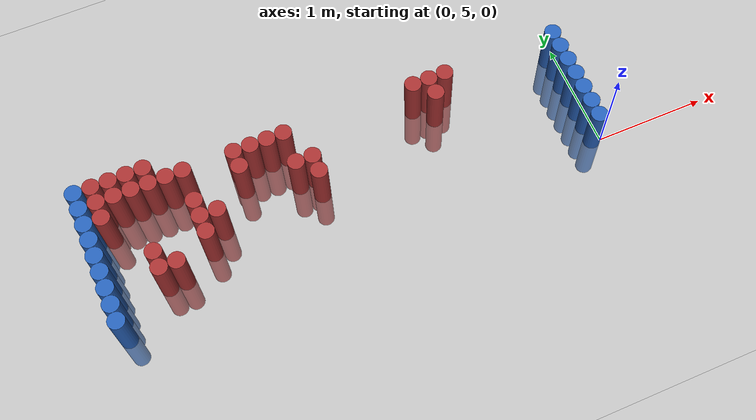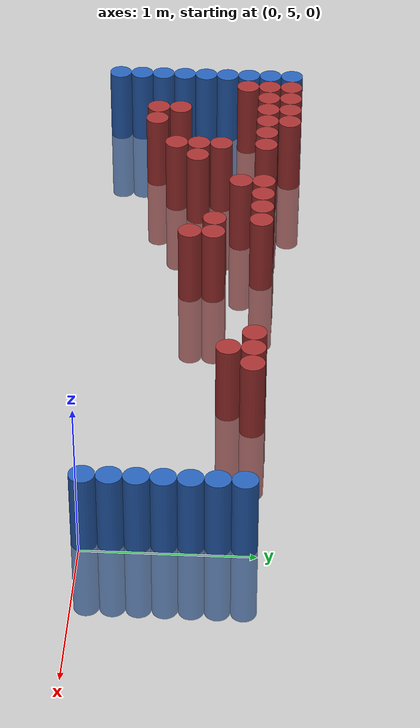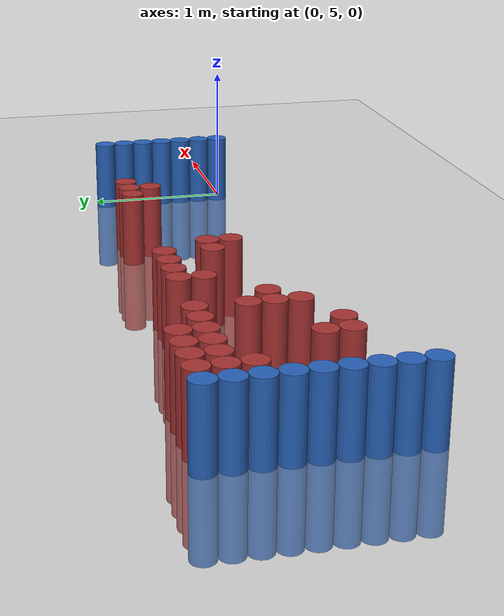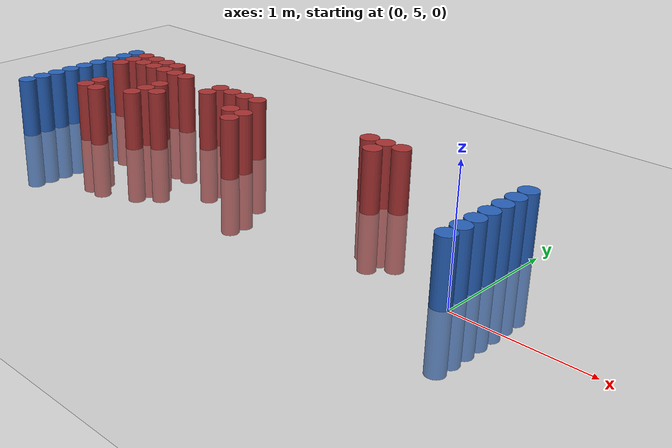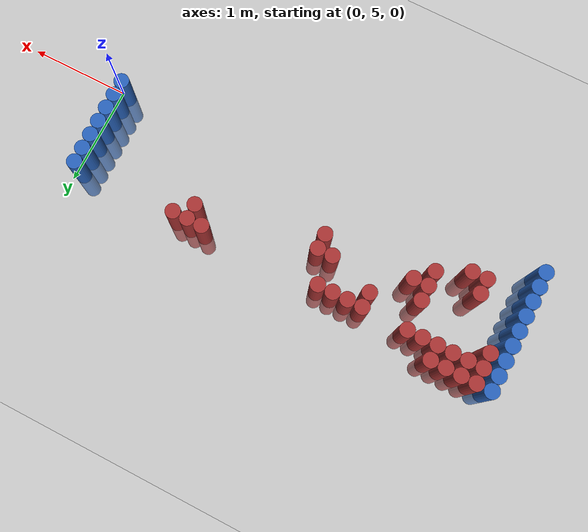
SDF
<sdf version="1.6">
 <world name="world_299">
  <model name="ground_plane">
   <static>1</static>
   <link name="link">
    <collision name="collision">
     <geometry><plane><normal>0 0 1</normal><size>100 100</size></plane></geometry>
     <surface><friction><ode><mu>100</mu><mu2>50</mu2></ode></friction></surface>
    </collision>
    <visual name="visual">
     <cast_shadows>0</cast_shadows>
     <geometry><plane><normal>0 0 1</normal><size>100 100</size></plane></geometry>
     <material>
      <script><uri>file://media/materials/scripts/gazebo.material</uri><name>Gazebo/Grey</name></script>
     </material>
    </visual>
   </link>
  </model>
  <model name="unit_cylinder_93">
   <static>1</static>
   <pose>-4.425000 4.875000 0.000000 0.000000 0.000000 0.000000</pose>
   <link name="link">
    <inertial>
     <mass>1</mass>
     <inertia><ixx>0.145833</ixx><ixy>0</ixy><ixz>0</ixz><iyy>0.145833</iyy><iyz>0</iyz><izz>0.125</izz></inertia>
    </inertial>
    <collision name="collision">
     <geometry><cylinder><radius>0.075000</radius><length>1</length></cylinder></geometry>
    </collision>
    <visual name="visual">
     <geometry><cylinder><radius>0.075000</radius><length>1</length></cylinder></geometry>
     <material>
      <ambient>0.152000 0.379000 0.720000 1</ambient>
      <diffuse>0.152000 0.379000 0.720000 1</diffuse>
     </material>
     <material>
      <script><name>Gazebo/Grey</name><uri>file://media/materials/scripts/gazebo.material</uri></script>
     </material>
    </visual>
   </link>
  </model>
  <model name="unit_cylinder_94">
   <static>1</static>
   <pose>-0.075000 5.025000 0.000000 0.000000 0.000000 0.000000</pose>
   <link name="link">
    <inertial>
     <mass>1</mass>
     <inertia><ixx>0.145833</ixx><ixy>0</ixy><ixz>0</ixz><iyy>0.145833</iyy><iyz>0</iyz><izz>0.125</izz></inertia>
    </inertial>
    <collision name="collision">
     <geometry><cylinder><radius>0.075000</radius><length>1</length></cylinder></geometry>
    </collision>
    <visual name="visual">
     <geometry><cylinder><radius>0.075000</radius><length>1</length></cylinder></geometry>
     <material>
      <ambient>0.152000 0.379000 0.720000 1</ambient>
      <diffuse>0.152000 0.379000 0.720000 1</diffuse>
     </material>
     <material>
      <script><name>Gazebo/Grey</name><uri>file://media/materials/scripts/gazebo.material</uri></script>
     </material>
    </visual>
   </link>
  </model>
  <model name="unit_cylinder_95">
   <static>1</static>
   <pose>-4.425000 5.025000 0.000000 0.000000 0.000000 0.000000</pose>
   <link name="link">
    <inertial>
     <mass>1</mass>
     <inertia><ixx>0.145833</ixx><ixy>0</ixy><ixz>0</ixz><iyy>0.145833</iyy><iyz>0</iyz><izz>0.125</izz></inertia>
    </inertial>
    <collision name="collision">
     <geometry><cylinder><radius>0.075000</radius><length>1</length></cylinder></geometry>
    </collision>
    <visual name="visual">
     <geometry><cylinder><radius>0.075000</radius><length>1</length></cylinder></geometry>
     <material>
      <ambient>0.152000 0.379000 0.720000 1</ambient>
      <diffuse>0.152000 0.379000 0.720000 1</diffuse>
     </material>
     <material>
      <script><name>Gazebo/Grey</name><uri>file://media/materials/scripts/gazebo.material</uri></script>
     </material>
    </visual>
   </link>
  </model>
  <model name="unit_cylinder_96">
   <static>1</static>
   <pose>-4.425000 5.175000 0.000000 0.000000 0.000000 0.000000</pose>
   <link name="link">
    <inertial>
     <mass>1</mass>
     <inertia><ixx>0.145833</ixx><ixy>0</ixy><ixz>0</ixz><iyy>0.145833</iyy><iyz>0</iyz><izz>0.125</izz></inertia>
    </inertial>
    <collision name="collision">
     <geometry><cylinder><radius>0.075000</radius><length>1</length></cylinder></geometry>
    </collision>
    <visual name="visual">
     <geometry><cylinder><radius>0.075000</radius><length>1</length></cylinder></geometry>
     <material>
      <ambient>0.152000 0.379000 0.720000 1</ambient>
      <diffuse>0.152000 0.379000 0.720000 1</diffuse>
     </material>
     <material>
      <script><name>Gazebo/Grey</name><uri>file://media/materials/scripts/gazebo.material</uri></script>
     </material>
    </visual>
   </link>
  </model>
  <model name="unit_cylinder_97">
   <static>1</static>
   <pose>-4.425000 5.325000 0.000000 0.000000 0.000000 0.000000</pose>
   <link name="link">
    <inertial>
     <mass>1</mass>
     <inertia><ixx>0.145833</ixx><ixy>0</ixy><ixz>0</ixz><iyy>0.145833</iyy><iyz>0</iyz><izz>0.125</izz></inertia>
    </inertial>
    <collision name="collision">
     <geometry><cylinder><radius>0.075000</radius><length>1</length></cylinder></geometry>
    </collision>
    <visual name="visual">
     <geometry><cylinder><radius>0.075000</radius><length>1</length></cylinder></geometry>
     <material>
      <ambient>0.152000 0.379000 0.720000 1</ambient>
      <diffuse>0.152000 0.379000 0.720000 1</diffuse>
     </material>
     <material>
      <script><name>Gazebo/Grey</name><uri>file://media/materials/scripts/gazebo.material</uri></script>
     </material>
    </visual>
   </link>
  </model>
  <model name="unit_cylinder_98">
   <static>1</static>
   <pose>-4.425000 5.475000 0.000000 0.000000 0.000000 0.000000</pose>
   <link name="link">
    <inertial>
     <mass>1</mass>
     <inertia><ixx>0.145833</ixx><ixy>0</ixy><ixz>0</ixz><iyy>0.145833</iyy><iyz>0</iyz><izz>0.125</izz></inertia>
    </inertial>
    <collision name="collision">
     <geometry><cylinder><radius>0.075000</radius><length>1</length></cylinder></geometry>
    </collision>
    <visual name="visual">
     <geometry><cylinder><radius>0.075000</radius><length>1</length></cylinder></geometry>
     <material>
      <ambient>0.152000 0.379000 0.720000 1</ambient>
      <diffuse>0.152000 0.379000 0.720000 1</diffuse>
     </material>
     <material>
      <script><name>Gazebo/Grey</name><uri>file://media/materials/scripts/gazebo.material</uri></script>
     </material>
    </visual>
   </link>
  </model>
  <model name="unit_cylinder_99">
   <static>1</static>
   <pose>-4.425000 5.625000 0.000000 0.000000 0.000000 0.000000</pose>
   <link name="link">
    <inertial>
     <mass>1</mass>
     <inertia><ixx>0.145833</ixx><ixy>0</ixy><ixz>0</ixz><iyy>0.145833</iyy><iyz>0</iyz><izz>0.125</izz></inertia>
    </inertial>
    <collision name="collision">
     <geometry><cylinder><radius>0.075000</radius><length>1</length></cylinder></geometry>
    </collision>
    <visual name="visual">
     <geometry><cylinder><radius>0.075000</radius><length>1</length></cylinder></geometry>
     <material>
      <ambient>0.152000 0.379000 0.720000 1</ambient>
      <diffuse>0.152000 0.379000 0.720000 1</diffuse>
     </material>
     <material>
      <script><name>Gazebo/Grey</name><uri>file://media/materials/scripts/gazebo.material</uri></script>
     </material>
    </visual>
   </link>
  </model>
  <model name="unit_cylinder_100">
   <static>1</static>
   <pose>-4.425000 5.775000 0.000000 0.000000 0.000000 0.000000</pose>
   <link name="link">
    <inertial>
     <mass>1</mass>
     <inertia><ixx>0.145833</ixx><ixy>0</ixy><ixz>0</ixz><iyy>0.145833</iyy><iyz>0</iyz><izz>0.125</izz></inertia>
    </inertial>
    <collision name="collision">
     <geometry><cylinder><radius>0.075000</radius><length>1</length></cylinder></geometry>
    </collision>
    <visual name="visual">
     <geometry><cylinder><radius>0.075000</radius><length>1</length></cylinder></geometry>
     <material>
      <ambient>0.152000 0.379000 0.720000 1</ambient>
      <diffuse>0.152000 0.379000 0.720000 1</diffuse>
     </material>
     <material>
      <script><name>Gazebo/Grey</name><uri>file://media/materials/scripts/gazebo.material</uri></script>
     </material>
    </visual>
   </link>
  </model>
  <model name="unit_cylinder_101">
   <static>1</static>
   <pose>-4.425000 5.925000 0.000000 0.000000 0.000000 0.000000</pose>
   <link name="link">
    <inertial>
     <mass>1</mass>
     <inertia><ixx>0.145833</ixx><ixy>0</ixy><ixz>0</ixz><iyy>0.145833</iyy><iyz>0</iyz><izz>0.125</izz></inertia>
    </inertial>
    <collision name="collision">
     <geometry><cylinder><radius>0.075000</radius><length>1</length></cylinder></geometry>
    </collision>
    <visual name="visual">
     <geometry><cylinder><radius>0.075000</radius><length>1</length></cylinder></geometry>
     <material>
      <ambient>0.152000 0.379000 0.720000 1</ambient>
      <diffuse>0.152000 0.379000 0.720000 1</diffuse>
     </material>
     <material>
      <script><name>Gazebo/Grey</name><uri>file://media/materials/scripts/gazebo.material</uri></script>
     </material>
    </visual>
   </link>
  </model>
  <model name="unit_cylinder_102">
   <static>1</static>
   <pose>-4.425000 6.075000 0.000000 0.000000 0.000000 0.000000</pose>
   <link name="link">
    <inertial>
     <mass>1</mass>
     <inertia><ixx>0.145833</ixx><ixy>0</ixy><ixz>0</ixz><iyy>0.145833</iyy><iyz>0</iyz><izz>0.125</izz></inertia>
    </inertial>
    <collision name="collision">
     <geometry><cylinder><radius>0.075000</radius><length>1</length></cylinder></geometry>
    </collision>
    <visual name="visual">
     <geometry><cylinder><radius>0.075000</radius><length>1</length></cylinder></geometry>
     <material>
      <ambient>0.152000 0.379000 0.720000 1</ambient>
      <diffuse>0.152000 0.379000 0.720000 1</diffuse>
     </material>
     <material>
      <script><name>Gazebo/Grey</name><uri>file://media/materials/scripts/gazebo.material</uri></script>
     </material>
    </visual>
   </link>
  </model>
  <model name="unit_cylinder_126">
   <static>1</static>
   <pose>-4.275000 5.775000 0.000000 0.000000 0.000000 0.000000</pose>
   <link name="link">
    <inertial>
     <mass>1</mass>
     <inertia><ixx>0.145833</ixx><ixy>0</ixy><ixz>0</ixz><iyy>0.145833</iyy><iyz>0</iyz><izz>0.125</izz></inertia>
    </inertial>
    <collision name="collision">
     <geometry><cylinder><radius>0.075000</radius><length>1</length></cylinder></geometry>
    </collision>
    <visual name="visual">
     <geometry><cylinder><radius>0.075000</radius><length>1</length></cylinder></geometry>
     <material>
      <ambient>0.648000 0.192000 0.192000 1</ambient>
      <diffuse>0.648000 0.192000 0.192000 1</diffuse>
     </material>
     <material>
      <script><name>Gazebo/Grey</name><uri>file://media/materials/scripts/gazebo.material</uri></script>
     </material>
    </visual>
   </link>
  </model>
  <model name="unit_cylinder_127">
   <static>1</static>
   <pose>-4.275000 5.925000 0.000000 0.000000 0.000000 0.000000</pose>
   <link name="link">
    <inertial>
     <mass>1</mass>
     <inertia><ixx>0.145833</ixx><ixy>0</ixy><ixz>0</ixz><iyy>0.145833</iyy><iyz>0</iyz><izz>0.125</izz></inertia>
    </inertial>
    <collision name="collision">
     <geometry><cylinder><radius>0.075000</radius><length>1</length></cylinder></geometry>
    </collision>
    <visual name="visual">
     <geometry><cylinder><radius>0.075000</radius><length>1</length></cylinder></geometry>
     <material>
      <ambient>0.648000 0.192000 0.192000 1</ambient>
      <diffuse>0.648000 0.192000 0.192000 1</diffuse>
     </material>
     <material>
      <script><name>Gazebo/Grey</name><uri>file://media/materials/scripts/gazebo.material</uri></script>
     </material>
    </visual>
   </link>
  </model>
  <model name="unit_cylinder_128">
   <static>1</static>
   <pose>-4.275000 6.075000 0.000000 0.000000 0.000000 0.000000</pose>
   <link name="link">
    <inertial>
     <mass>1</mass>
     <inertia><ixx>0.145833</ixx><ixy>0</ixy><ixz>0</ixz><iyy>0.145833</iyy><iyz>0</iyz><izz>0.125</izz></inertia>
    </inertial>
    <collision name="collision">
     <geometry><cylinder><radius>0.075000</radius><length>1</length></cylinder></geometry>
    </collision>
    <visual name="visual">
     <geometry><cylinder><radius>0.075000</radius><length>1</length></cylinder></geometry>
     <material>
      <ambient>0.648000 0.192000 0.192000 1</ambient>
      <diffuse>0.648000 0.192000 0.192000 1</diffuse>
     </material>
     <material>
      <script><name>Gazebo/Grey</name><uri>file://media/materials/scripts/gazebo.material</uri></script>
     </material>
    </visual>
   </link>
  </model>
  <model name="unit_cylinder_138">
   <static>1</static>
   <pose>-4.125000 5.925000 0.000000 0.000000 0.000000 0.000000</pose>
   <link name="link">
    <inertial>
     <mass>1</mass>
     <inertia><ixx>0.145833</ixx><ixy>0</ixy><ixz>0</ixz><iyy>0.145833</iyy><iyz>0</iyz><izz>0.125</izz></inertia>
    </inertial>
    <collision name="collision">
     <geometry><cylinder><radius>0.075000</radius><length>1</length></cylinder></geometry>
    </collision>
    <visual name="visual">
     <geometry><cylinder><radius>0.075000</radius><length>1</length></cylinder></geometry>
     <material>
      <ambient>0.648000 0.192000 0.192000 1</ambient>
      <diffuse>0.648000 0.192000 0.192000 1</diffuse>
     </material>
     <material>
      <script><name>Gazebo/Grey</name><uri>file://media/materials/scripts/gazebo.material</uri></script>
     </material>
    </visual>
   </link>
  </model>
  <model name="unit_cylinder_139">
   <static>1</static>
   <pose>-4.125000 6.075000 0.000000 0.000000 0.000000 0.000000</pose>
   <link name="link">
    <inertial>
     <mass>1</mass>
     <inertia><ixx>0.145833</ixx><ixy>0</ixy><ixz>0</ixz><iyy>0.145833</iyy><iyz>0</iyz><izz>0.125</izz></inertia>
    </inertial>
    <collision name="collision">
     <geometry><cylinder><radius>0.075000</radius><length>1</length></cylinder></geometry>
    </collision>
    <visual name="visual">
     <geometry><cylinder><radius>0.075000</radius><length>1</length></cylinder></geometry>
     <material>
      <ambient>0.648000 0.192000 0.192000 1</ambient>
      <diffuse>0.648000 0.192000 0.192000 1</diffuse>
     </material>
     <material>
      <script><name>Gazebo/Grey</name><uri>file://media/materials/scripts/gazebo.material</uri></script>
     </material>
    </visual>
   </link>
  </model>
  <model name="unit_cylinder_146">
   <static>1</static>
   <pose>-3.975000 5.175000 0.000000 0.000000 0.000000 0.000000</pose>
   <link name="link">
    <inertial>
     <mass>1</mass>
     <inertia><ixx>0.145833</ixx><ixy>0</ixy><ixz>0</ixz><iyy>0.145833</iyy><iyz>0</iyz><izz>0.125</izz></inertia>
    </inertial>
    <collision name="collision">
     <geometry><cylinder><radius>0.075000</radius><length>1</length></cylinder></geometry>
    </collision>
    <visual name="visual">
     <geometry><cylinder><radius>0.075000</radius><length>1</length></cylinder></geometry>
     <material>
      <ambient>0.648000 0.192000 0.192000 1</ambient>
      <diffuse>0.648000 0.192000 0.192000 1</diffuse>
     </material>
     <material>
      <script><name>Gazebo/Grey</name><uri>file://media/materials/scripts/gazebo.material</uri></script>
     </material>
    </visual>
   </link>
  </model>
  <model name="unit_cylinder_147">
   <static>1</static>
   <pose>-3.975000 5.325000 0.000000 0.000000 0.000000 0.000000</pose>
   <link name="link">
    <inertial>
     <mass>1</mass>
     <inertia><ixx>0.145833</ixx><ixy>0</ixy><ixz>0</ixz><iyy>0.145833</iyy><iyz>0</iyz><izz>0.125</izz></inertia>
    </inertial>
    <collision name="collision">
     <geometry><cylinder><radius>0.075000</radius><length>1</length></cylinder></geometry>
    </collision>
    <visual name="visual">
     <geometry><cylinder><radius>0.075000</radius><length>1</length></cylinder></geometry>
     <material>
      <ambient>0.648000 0.192000 0.192000 1</ambient>
      <diffuse>0.648000 0.192000 0.192000 1</diffuse>
     </material>
     <material>
      <script><name>Gazebo/Grey</name><uri>file://media/materials/scripts/gazebo.material</uri></script>
     </material>
    </visual>
   </link>
  </model>
  <model name="unit_cylinder_148">
   <static>1</static>
   <pose>-3.975000 5.925000 0.000000 0.000000 0.000000 0.000000</pose>
   <link name="link">
    <inertial>
     <mass>1</mass>
     <inertia><ixx>0.145833</ixx><ixy>0</ixy><ixz>0</ixz><iyy>0.145833</iyy><iyz>0</iyz><izz>0.125</izz></inertia>
    </inertial>
    <collision name="collision">
     <geometry><cylinder><radius>0.075000</radius><length>1</length></cylinder></geometry>
    </collision>
    <visual name="visual">
     <geometry><cylinder><radius>0.075000</radius><length>1</length></cylinder></geometry>
     <material>
      <ambient>0.648000 0.192000 0.192000 1</ambient>
      <diffuse>0.648000 0.192000 0.192000 1</diffuse>
     </material>
     <material>
      <script><name>Gazebo/Grey</name><uri>file://media/materials/scripts/gazebo.material</uri></script>
     </material>
    </visual>
   </link>
  </model>
  <model name="unit_cylinder_149">
   <static>1</static>
   <pose>-3.975000 6.075000 0.000000 0.000000 0.000000 0.000000</pose>
   <link name="link">
    <inertial>
     <mass>1</mass>
     <inertia><ixx>0.145833</ixx><ixy>0</ixy><ixz>0</ixz><iyy>0.145833</iyy><iyz>0</iyz><izz>0.125</izz></inertia>
    </inertial>
    <collision name="collision">
     <geometry><cylinder><radius>0.075000</radius><length>1</length></cylinder></geometry>
    </collision>
    <visual name="visual">
     <geometry><cylinder><radius>0.075000</radius><length>1</length></cylinder></geometry>
     <material>
      <ambient>0.648000 0.192000 0.192000 1</ambient>
      <diffuse>0.648000 0.192000 0.192000 1</diffuse>
     </material>
     <material>
      <script><name>Gazebo/Grey</name><uri>file://media/materials/scripts/gazebo.material</uri></script>
     </material>
    </visual>
   </link>
  </model>
  <model name="unit_cylinder_159">
   <static>1</static>
   <pose>-3.825000 5.175000 0.000000 0.000000 0.000000 0.000000</pose>
   <link name="link">
    <inertial>
     <mass>1</mass>
     <inertia><ixx>0.145833</ixx><ixy>0</ixy><ixz>0</ixz><iyy>0.145833</iyy><iyz>0</iyz><izz>0.125</izz></inertia>
    </inertial>
    <collision name="collision">
     <geometry><cylinder><radius>0.075000</radius><length>1</length></cylinder></geometry>
    </collision>
    <visual name="visual">
     <geometry><cylinder><radius>0.075000</radius><length>1</length></cylinder></geometry>
     <material>
      <ambient>0.648000 0.192000 0.192000 1</ambient>
      <diffuse>0.648000 0.192000 0.192000 1</diffuse>
     </material>
     <material>
      <script><name>Gazebo/Grey</name><uri>file://media/materials/scripts/gazebo.material</uri></script>
     </material>
    </visual>
   </link>
  </model>
  <model name="unit_cylinder_160">
   <static>1</static>
   <pose>-3.825000 5.925000 0.000000 0.000000 0.000000 0.000000</pose>
   <link name="link">
    <inertial>
     <mass>1</mass>
     <inertia><ixx>0.145833</ixx><ixy>0</ixy><ixz>0</ixz><iyy>0.145833</iyy><iyz>0</iyz><izz>0.125</izz></inertia>
    </inertial>
    <collision name="collision">
     <geometry><cylinder><radius>0.075000</radius><length>1</length></cylinder></geometry>
    </collision>
    <visual name="visual">
     <geometry><cylinder><radius>0.075000</radius><length>1</length></cylinder></geometry>
     <material>
      <ambient>0.648000 0.192000 0.192000 1</ambient>
      <diffuse>0.648000 0.192000 0.192000 1</diffuse>
     </material>
     <material>
      <script><name>Gazebo/Grey</name><uri>file://media/materials/scripts/gazebo.material</uri></script>
     </material>
    </visual>
   </link>
  </model>
  <model name="unit_cylinder_161">
   <static>1</static>
   <pose>-3.825000 6.075000 0.000000 0.000000 0.000000 0.000000</pose>
   <link name="link">
    <inertial>
     <mass>1</mass>
     <inertia><ixx>0.145833</ixx><ixy>0</ixy><ixz>0</ixz><iyy>0.145833</iyy><iyz>0</iyz><izz>0.125</izz></inertia>
    </inertial>
    <collision name="collision">
     <geometry><cylinder><radius>0.075000</radius><length>1</length></cylinder></geometry>
    </collision>
    <visual name="visual">
     <geometry><cylinder><radius>0.075000</radius><length>1</length></cylinder></geometry>
     <material>
      <ambient>0.648000 0.192000 0.192000 1</ambient>
      <diffuse>0.648000 0.192000 0.192000 1</diffuse>
     </material>
     <material>
      <script><name>Gazebo/Grey</name><uri>file://media/materials/scripts/gazebo.material</uri></script>
     </material>
    </visual>
   </link>
  </model>
  <model name="unit_cylinder_167">
   <static>1</static>
   <pose>-3.675000 5.925000 0.000000 0.000000 0.000000 0.000000</pose>
   <link name="link">
    <inertial>
     <mass>1</mass>
     <inertia><ixx>0.145833</ixx><ixy>0</ixy><ixz>0</ixz><iyy>0.145833</iyy><iyz>0</iyz><izz>0.125</izz></inertia>
    </inertial>
    <collision name="collision">
     <geometry><cylinder><radius>0.075000</radius><length>1</length></cylinder></geometry>
    </collision>
    <visual name="visual">
     <geometry><cylinder><radius>0.075000</radius><length>1</length></cylinder></geometry>
     <material>
      <ambient>0.648000 0.192000 0.192000 1</ambient>
      <diffuse>0.648000 0.192000 0.192000 1</diffuse>
     </material>
     <material>
      <script><name>Gazebo/Grey</name><uri>file://media/materials/scripts/gazebo.material</uri></script>
     </material>
    </visual>
   </link>
  </model>
  <model name="unit_cylinder_170">
   <static>1</static>
   <pose>-3.525000 5.325000 0.000000 0.000000 0.000000 0.000000</pose>
   <link name="link">
    <inertial>
     <mass>1</mass>
     <inertia><ixx>0.145833</ixx><ixy>0</ixy><ixz>0</ixz><iyy>0.145833</iyy><iyz>0</iyz><izz>0.125</izz></inertia>
    </inertial>
    <collision name="collision">
     <geometry><cylinder><radius>0.075000</radius><length>1</length></cylinder></geometry>
    </collision>
    <visual name="visual">
     <geometry><cylinder><radius>0.075000</radius><length>1</length></cylinder></geometry>
     <material>
      <ambient>0.648000 0.192000 0.192000 1</ambient>
      <diffuse>0.648000 0.192000 0.192000 1</diffuse>
     </material>
     <material>
      <script><name>Gazebo/Grey</name><uri>file://media/materials/scripts/gazebo.material</uri></script>
     </material>
    </visual>
   </link>
  </model>
  <model name="unit_cylinder_171">
   <static>1</static>
   <pose>-3.525000 5.475000 0.000000 0.000000 0.000000 0.000000</pose>
   <link name="link">
    <inertial>
     <mass>1</mass>
     <inertia><ixx>0.145833</ixx><ixy>0</ixy><ixz>0</ixz><iyy>0.145833</iyy><iyz>0</iyz><izz>0.125</izz></inertia>
    </inertial>
    <collision name="collision">
     <geometry><cylinder><radius>0.075000</radius><length>1</length></cylinder></geometry>
    </collision>
    <visual name="visual">
     <geometry><cylinder><radius>0.075000</radius><length>1</length></cylinder></geometry>
     <material>
      <ambient>0.648000 0.192000 0.192000 1</ambient>
      <diffuse>0.648000 0.192000 0.192000 1</diffuse>
     </material>
     <material>
      <script><name>Gazebo/Grey</name><uri>file://media/materials/scripts/gazebo.material</uri></script>
     </material>
    </visual>
   </link>
  </model>
  <model name="unit_cylinder_172">
   <static>1</static>
   <pose>-3.525000 5.625000 0.000000 0.000000 0.000000 0.000000</pose>
   <link name="link">
    <inertial>
     <mass>1</mass>
     <inertia><ixx>0.145833</ixx><ixy>0</ixy><ixz>0</ixz><iyy>0.145833</iyy><iyz>0</iyz><izz>0.125</izz></inertia>
    </inertial>
    <collision name="collision">
     <geometry><cylinder><radius>0.075000</radius><length>1</length></cylinder></geometry>
    </collision>
    <visual name="visual">
     <geometry><cylinder><radius>0.075000</radius><length>1</length></cylinder></geometry>
     <material>
      <ambient>0.648000 0.192000 0.192000 1</ambient>
      <diffuse>0.648000 0.192000 0.192000 1</diffuse>
     </material>
     <material>
      <script><name>Gazebo/Grey</name><uri>file://media/materials/scripts/gazebo.material</uri></script>
     </material>
    </visual>
   </link>
  </model>
  <model name="unit_cylinder_173">
   <static>1</static>
   <pose>-3.525000 5.925000 0.000000 0.000000 0.000000 0.000000</pose>
   <link name="link">
    <inertial>
     <mass>1</mass>
     <inertia><ixx>0.145833</ixx><ixy>0</ixy><ixz>0</ixz><iyy>0.145833</iyy><iyz>0</iyz><izz>0.125</izz></inertia>
    </inertial>
    <collision name="collision">
     <geometry><cylinder><radius>0.075000</radius><length>1</length></cylinder></geometry>
    </collision>
    <visual name="visual">
     <geometry><cylinder><radius>0.075000</radius><length>1</length></cylinder></geometry>
     <material>
      <ambient>0.648000 0.192000 0.192000 1</ambient>
      <diffuse>0.648000 0.192000 0.192000 1</diffuse>
     </material>
     <material>
      <script><name>Gazebo/Grey</name><uri>file://media/materials/scripts/gazebo.material</uri></script>
     </material>
    </visual>
   </link>
  </model>
  <model name="unit_cylinder_175">
   <static>1</static>
   <pose>-3.375000 5.475000 0.000000 0.000000 0.000000 0.000000</pose>
   <link name="link">
    <inertial>
     <mass>1</mass>
     <inertia><ixx>0.145833</ixx><ixy>0</ixy><ixz>0</ixz><iyy>0.145833</iyy><iyz>0</iyz><izz>0.125</izz></inertia>
    </inertial>
    <collision name="collision">
     <geometry><cylinder><radius>0.075000</radius><length>1</length></cylinder></geometry>
    </collision>
    <visual name="visual">
     <geometry><cylinder><radius>0.075000</radius><length>1</length></cylinder></geometry>
     <material>
      <ambient>0.648000 0.192000 0.192000 1</ambient>
      <diffuse>0.648000 0.192000 0.192000 1</diffuse>
     </material>
     <material>
      <script><name>Gazebo/Grey</name><uri>file://media/materials/scripts/gazebo.material</uri></script>
     </material>
    </visual>
   </link>
  </model>
  <model name="unit_cylinder_180">
   <static>1</static>
   <pose>-3.075000 5.775000 0.000000 0.000000 0.000000 0.000000</pose>
   <link name="link">
    <inertial>
     <mass>1</mass>
     <inertia><ixx>0.145833</ixx><ixy>0</ixy><ixz>0</ixz><iyy>0.145833</iyy><iyz>0</iyz><izz>0.125</izz></inertia>
    </inertial>
    <collision name="collision">
     <geometry><cylinder><radius>0.075000</radius><length>1</length></cylinder></geometry>
    </collision>
    <visual name="visual">
     <geometry><cylinder><radius>0.075000</radius><length>1</length></cylinder></geometry>
     <material>
      <ambient>0.648000 0.192000 0.192000 1</ambient>
      <diffuse>0.648000 0.192000 0.192000 1</diffuse>
     </material>
     <material>
      <script><name>Gazebo/Grey</name><uri>file://media/materials/scripts/gazebo.material</uri></script>
     </material>
    </visual>
   </link>
  </model>
  <model name="unit_cylinder_181">
   <static>1</static>
   <pose>-3.075000 5.925000 0.000000 0.000000 0.000000 0.000000</pose>
   <link name="link">
    <inertial>
     <mass>1</mass>
     <inertia><ixx>0.145833</ixx><ixy>0</ixy><ixz>0</ixz><iyy>0.145833</iyy><iyz>0</iyz><izz>0.125</izz></inertia>
    </inertial>
    <collision name="collision">
     <geometry><cylinder><radius>0.075000</radius><length>1</length></cylinder></geometry>
    </collision>
    <visual name="visual">
     <geometry><cylinder><radius>0.075000</radius><length>1</length></cylinder></geometry>
     <material>
      <ambient>0.648000 0.192000 0.192000 1</ambient>
      <diffuse>0.648000 0.192000 0.192000 1</diffuse>
     </material>
     <material>
      <script><name>Gazebo/Grey</name><uri>file://media/materials/scripts/gazebo.material</uri></script>
     </material>
    </visual>
   </link>
  </model>
  <model name="unit_cylinder_185">
   <static>1</static>
   <pose>-2.925000 5.925000 0.000000 0.000000 0.000000 0.000000</pose>
   <link name="link">
    <inertial>
     <mass>1</mass>
     <inertia><ixx>0.145833</ixx><ixy>0</ixy><ixz>0</ixz><iyy>0.145833</iyy><iyz>0</iyz><izz>0.125</izz></inertia>
    </inertial>
    <collision name="collision">
     <geometry><cylinder><radius>0.075000</radius><length>1</length></cylinder></geometry>
    </collision>
    <visual name="visual">
     <geometry><cylinder><radius>0.075000</radius><length>1</length></cylinder></geometry>
     <material>
      <ambient>0.648000 0.192000 0.192000 1</ambient>
      <diffuse>0.648000 0.192000 0.192000 1</diffuse>
     </material>
     <material>
      <script><name>Gazebo/Grey</name><uri>file://media/materials/scripts/gazebo.material</uri></script>
     </material>
    </visual>
   </link>
  </model>
  <model name="unit_cylinder_192">
   <static>1</static>
   <pose>-2.775000 5.925000 0.000000 0.000000 0.000000 0.000000</pose>
   <link name="link">
    <inertial>
     <mass>1</mass>
     <inertia><ixx>0.145833</ixx><ixy>0</ixy><ixz>0</ixz><iyy>0.145833</iyy><iyz>0</iyz><izz>0.125</izz></inertia>
    </inertial>
    <collision name="collision">
     <geometry><cylinder><radius>0.075000</radius><length>1</length></cylinder></geometry>
    </collision>
    <visual name="visual">
     <geometry><cylinder><radius>0.075000</radius><length>1</length></cylinder></geometry>
     <material>
      <ambient>0.648000 0.192000 0.192000 1</ambient>
      <diffuse>0.648000 0.192000 0.192000 1</diffuse>
     </material>
     <material>
      <script><name>Gazebo/Grey</name><uri>file://media/materials/scripts/gazebo.material</uri></script>
     </material>
    </visual>
   </link>
  </model>
  <model name="unit_cylinder_199">
   <static>1</static>
   <pose>-2.625000 5.625000 0.000000 0.000000 0.000000 0.000000</pose>
   <link name="link">
    <inertial>
     <mass>1</mass>
     <inertia><ixx>0.145833</ixx><ixy>0</ixy><ixz>0</ixz><iyy>0.145833</iyy><iyz>0</iyz><izz>0.125</izz></inertia>
    </inertial>
    <collision name="collision">
     <geometry><cylinder><radius>0.075000</radius><length>1</length></cylinder></geometry>
    </collision>
    <visual name="visual">
     <geometry><cylinder><radius>0.075000</radius><length>1</length></cylinder></geometry>
     <material>
      <ambient>0.648000 0.192000 0.192000 1</ambient>
      <diffuse>0.648000 0.192000 0.192000 1</diffuse>
     </material>
     <material>
      <script><name>Gazebo/Grey</name><uri>file://media/materials/scripts/gazebo.material</uri></script>
     </material>
    </visual>
   </link>
  </model>
  <model name="unit_cylinder_200">
   <static>1</static>
   <pose>-2.625000 5.925000 0.000000 0.000000 0.000000 0.000000</pose>
   <link name="link">
    <inertial>
     <mass>1</mass>
     <inertia><ixx>0.145833</ixx><ixy>0</ixy><ixz>0</ixz><iyy>0.145833</iyy><iyz>0</iyz><izz>0.125</izz></inertia>
    </inertial>
    <collision name="collision">
     <geometry><cylinder><radius>0.075000</radius><length>1</length></cylinder></geometry>
    </collision>
    <visual name="visual">
     <geometry><cylinder><radius>0.075000</radius><length>1</length></cylinder></geometry>
     <material>
      <ambient>0.648000 0.192000 0.192000 1</ambient>
      <diffuse>0.648000 0.192000 0.192000 1</diffuse>
     </material>
     <material>
      <script><name>Gazebo/Grey</name><uri>file://media/materials/scripts/gazebo.material</uri></script>
     </material>
    </visual>
   </link>
  </model>
  <model name="unit_cylinder_204">
   <static>1</static>
   <pose>-2.475000 5.475000 0.000000 0.000000 0.000000 0.000000</pose>
   <link name="link">
    <inertial>
     <mass>1</mass>
     <inertia><ixx>0.145833</ixx><ixy>0</ixy><ixz>0</ixz><iyy>0.145833</iyy><iyz>0</iyz><izz>0.125</izz></inertia>
    </inertial>
    <collision name="collision">
     <geometry><cylinder><radius>0.075000</radius><length>1</length></cylinder></geometry>
    </collision>
    <visual name="visual">
     <geometry><cylinder><radius>0.075000</radius><length>1</length></cylinder></geometry>
     <material>
      <ambient>0.648000 0.192000 0.192000 1</ambient>
      <diffuse>0.648000 0.192000 0.192000 1</diffuse>
     </material>
     <material>
      <script><name>Gazebo/Grey</name><uri>file://media/materials/scripts/gazebo.material</uri></script>
     </material>
    </visual>
   </link>
  </model>
  <model name="unit_cylinder_205">
   <static>1</static>
   <pose>-2.475000 5.625000 0.000000 0.000000 0.000000 0.000000</pose>
   <link name="link">
    <inertial>
     <mass>1</mass>
     <inertia><ixx>0.145833</ixx><ixy>0</ixy><ixz>0</ixz><iyy>0.145833</iyy><iyz>0</iyz><izz>0.125</izz></inertia>
    </inertial>
    <collision name="collision">
     <geometry><cylinder><radius>0.075000</radius><length>1</length></cylinder></geometry>
    </collision>
    <visual name="visual">
     <geometry><cylinder><radius>0.075000</radius><length>1</length></cylinder></geometry>
     <material>
      <ambient>0.648000 0.192000 0.192000 1</ambient>
      <diffuse>0.648000 0.192000 0.192000 1</diffuse>
     </material>
     <material>
      <script><name>Gazebo/Grey</name><uri>file://media/materials/scripts/gazebo.material</uri></script>
     </material>
    </visual>
   </link>
  </model>
  <model name="unit_cylinder_226">
   <static>1</static>
   <pose>-1.425000 5.925000 0.000000 0.000000 0.000000 0.000000</pose>
   <link name="link">
    <inertial>
     <mass>1</mass>
     <inertia><ixx>0.145833</ixx><ixy>0</ixy><ixz>0</ixz><iyy>0.145833</iyy><iyz>0</iyz><izz>0.125</izz></inertia>
    </inertial>
    <collision name="collision">
     <geometry><cylinder><radius>0.075000</radius><length>1</length></cylinder></geometry>
    </collision>
    <visual name="visual">
     <geometry><cylinder><radius>0.075000</radius><length>1</length></cylinder></geometry>
     <material>
      <ambient>0.648000 0.192000 0.192000 1</ambient>
      <diffuse>0.648000 0.192000 0.192000 1</diffuse>
     </material>
     <material>
      <script><name>Gazebo/Grey</name><uri>file://media/materials/scripts/gazebo.material</uri></script>
     </material>
    </visual>
   </link>
  </model>
  <model name="unit_cylinder_229">
   <static>1</static>
   <pose>-1.275000 5.775000 0.000000 0.000000 0.000000 0.000000</pose>
   <link name="link">
    <inertial>
     <mass>1</mass>
     <inertia><ixx>0.145833</ixx><ixy>0</ixy><ixz>0</ixz><iyy>0.145833</iyy><iyz>0</iyz><izz>0.125</izz></inertia>
    </inertial>
    <collision name="collision">
     <geometry><cylinder><radius>0.075000</radius><length>1</length></cylinder></geometry>
    </collision>
    <visual name="visual">
     <geometry><cylinder><radius>0.075000</radius><length>1</length></cylinder></geometry>
     <material>
      <ambient>0.648000 0.192000 0.192000 1</ambient>
      <diffuse>0.648000 0.192000 0.192000 1</diffuse>
     </material>
     <material>
      <script><name>Gazebo/Grey</name><uri>file://media/materials/scripts/gazebo.material</uri></script>
     </material>
    </visual>
   </link>
  </model>
  <model name="unit_cylinder_230">
   <static>1</static>
   <pose>-1.275000 5.925000 0.000000 0.000000 0.000000 0.000000</pose>
   <link name="link">
    <inertial>
     <mass>1</mass>
     <inertia><ixx>0.145833</ixx><ixy>0</ixy><ixz>0</ixz><iyy>0.145833</iyy><iyz>0</iyz><izz>0.125</izz></inertia>
    </inertial>
    <collision name="collision">
     <geometry><cylinder><radius>0.075000</radius><length>1</length></cylinder></geometry>
    </collision>
    <visual name="visual">
     <geometry><cylinder><radius>0.075000</radius><length>1</length></cylinder></geometry>
     <material>
      <ambient>0.648000 0.192000 0.192000 1</ambient>
      <diffuse>0.648000 0.192000 0.192000 1</diffuse>
     </material>
     <material>
      <script><name>Gazebo/Grey</name><uri>file://media/materials/scripts/gazebo.material</uri></script>
     </material>
    </visual>
   </link>
  </model>
  <model name="unit_cylinder_236">
   <static>1</static>
   <pose>-1.125000 5.925000 0.000000 0.000000 0.000000 0.000000</pose>
   <link name="link">
    <inertial>
     <mass>1</mass>
     <inertia><ixx>0.145833</ixx><ixy>0</ixy><ixz>0</ixz><iyy>0.145833</iyy><iyz>0</iyz><izz>0.125</izz></inertia>
    </inertial>
    <collision name="collision">
     <geometry><cylinder><radius>0.075000</radius><length>1</length></cylinder></geometry>
    </collision>
    <visual name="visual">
     <geometry><cylinder><radius>0.075000</radius><length>1</length></cylinder></geometry>
     <material>
      <ambient>0.648000 0.192000 0.192000 1</ambient>
      <diffuse>0.648000 0.192000 0.192000 1</diffuse>
     </material>
     <material>
      <script><name>Gazebo/Grey</name><uri>file://media/materials/scripts/gazebo.material</uri></script>
     </material>
    </visual>
   </link>
  </model>
  <model name="unit_cylinder_247">
   <static>1</static>
   <pose>-0.075000 5.175000 0.000000 0.000000 0.000000 0.000000</pose>
   <link name="link">
    <inertial>
     <mass>1</mass>
     <inertia><ixx>0.145833</ixx><ixy>0</ixy><ixz>0</ixz><iyy>0.145833</iyy><iyz>0</iyz><izz>0.125</izz></inertia>
    </inertial>
    <collision name="collision">
     <geometry><cylinder><radius>0.075000</radius><length>1</length></cylinder></geometry>
    </collision>
    <visual name="visual">
     <geometry><cylinder><radius>0.075000</radius><length>1</length></cylinder></geometry>
     <material>
      <ambient>0.152000 0.379000 0.720000 1</ambient>
      <diffuse>0.152000 0.379000 0.720000 1</diffuse>
     </material>
     <material>
      <script><name>Gazebo/Grey</name><uri>file://media/materials/scripts/gazebo.material</uri></script>
     </material>
    </visual>
   </link>
  </model>
  <model name="unit_cylinder_248">
   <static>1</static>
   <pose>-0.075000 5.325000 0.000000 0.000000 0.000000 0.000000</pose>
   <link name="link">
    <inertial>
     <mass>1</mass>
     <inertia><ixx>0.145833</ixx><ixy>0</ixy><ixz>0</ixz><iyy>0.145833</iyy><iyz>0</iyz><izz>0.125</izz></inertia>
    </inertial>
    <collision name="collision">
     <geometry><cylinder><radius>0.075000</radius><length>1</length></cylinder></geometry>
    </collision>
    <visual name="visual">
     <geometry><cylinder><radius>0.075000</radius><length>1</length></cylinder></geometry>
     <material>
      <ambient>0.152000 0.379000 0.720000 1</ambient>
      <diffuse>0.152000 0.379000 0.720000 1</diffuse>
     </material>
     <material>
      <script><name>Gazebo/Grey</name><uri>file://media/materials/scripts/gazebo.material</uri></script>
     </material>
    </visual>
   </link>
  </model>
  <model name="unit_cylinder_249">
   <static>1</static>
   <pose>-0.075000 5.475000 0.000000 0.000000 0.000000 0.000000</pose>
   <link name="link">
    <inertial>
     <mass>1</mass>
     <inertia><ixx>0.145833</ixx><ixy>0</ixy><ixz>0</ixz><iyy>0.145833</iyy><iyz>0</iyz><izz>0.125</izz></inertia>
    </inertial>
    <collision name="collision">
     <geometry><cylinder><radius>0.075000</radius><length>1</length></cylinder></geometry>
    </collision>
    <visual name="visual">
     <geometry><cylinder><radius>0.075000</radius><length>1</length></cylinder></geometry>
     <material>
      <ambient>0.152000 0.379000 0.720000 1</ambient>
      <diffuse>0.152000 0.379000 0.720000 1</diffuse>
     </material>
     <material>
      <script><name>Gazebo/Grey</name><uri>file://media/materials/scripts/gazebo.material</uri></script>
     </material>
    </visual>
   </link>
  </model>
  <model name="unit_cylinder_250">
   <static>1</static>
   <pose>-0.075000 5.625000 0.000000 0.000000 0.000000 0.000000</pose>
   <link name="link">
    <inertial>
     <mass>1</mass>
     <inertia><ixx>0.145833</ixx><ixy>0</ixy><ixz>0</ixz><iyy>0.145833</iyy><iyz>0</iyz><izz>0.125</izz></inertia>
    </inertial>
    <collision name="collision">
     <geometry><cylinder><radius>0.075000</radius><length>1</length></cylinder></geometry>
    </collision>
    <visual name="visual">
     <geometry><cylinder><radius>0.075000</radius><length>1</length></cylinder></geometry>
     <material>
      <ambient>0.152000 0.379000 0.720000 1</ambient>
      <diffuse>0.152000 0.379000 0.720000 1</diffuse>
     </material>
     <material>
      <script><name>Gazebo/Grey</name><uri>file://media/materials/scripts/gazebo.material</uri></script>
     </material>
    </visual>
   </link>
  </model>
  <model name="unit_cylinder_251">
   <static>1</static>
   <pose>-0.075000 5.775000 0.000000 0.000000 0.000000 0.000000</pose>
   <link name="link">
    <inertial>
     <mass>1</mass>
     <inertia><ixx>0.145833</ixx><ixy>0</ixy><ixz>0</ixz><iyy>0.145833</iyy><iyz>0</iyz><izz>0.125</izz></inertia>
    </inertial>
    <collision name="collision">
     <geometry><cylinder><radius>0.075000</radius><length>1</length></cylinder></geometry>
    </collision>
    <visual name="visual">
     <geometry><cylinder><radius>0.075000</radius><length>1</length></cylinder></geometry>
     <material>
      <ambient>0.152000 0.379000 0.720000 1</ambient>
      <diffuse>0.152000 0.379000 0.720000 1</diffuse>
     </material>
     <material>
      <script><name>Gazebo/Grey</name><uri>file://media/materials/scripts/gazebo.material</uri></script>
     </material>
    </visual>
   </link>
  </model>
  <model name="unit_cylinder_252">
   <static>1</static>
   <pose>-0.075000 5.925000 0.000000 0.000000 0.000000 0.000000</pose>
   <link name="link">
    <inertial>
     <mass>1</mass>
     <inertia><ixx>0.145833</ixx><ixy>0</ixy><ixz>0</ixz><iyy>0.145833</iyy><iyz>0</iyz><izz>0.125</izz></inertia>
    </inertial>
    <collision name="collision">
     <geometry><cylinder><radius>0.075000</radius><length>1</length></cylinder></geometry>
    </collision>
    <visual name="visual">
     <geometry><cylinder><radius>0.075000</radius><length>1</length></cylinder></geometry>
     <material>
      <ambient>0.152000 0.379000 0.720000 1</ambient>
      <diffuse>0.152000 0.379000 0.720000 1</diffuse>
     </material>
     <material>
      <script><name>Gazebo/Grey</name><uri>file://media/materials/scripts/gazebo.material</uri></script>
     </material>
    </visual>
   </link>
  </model>
 </world>
</sdf>
